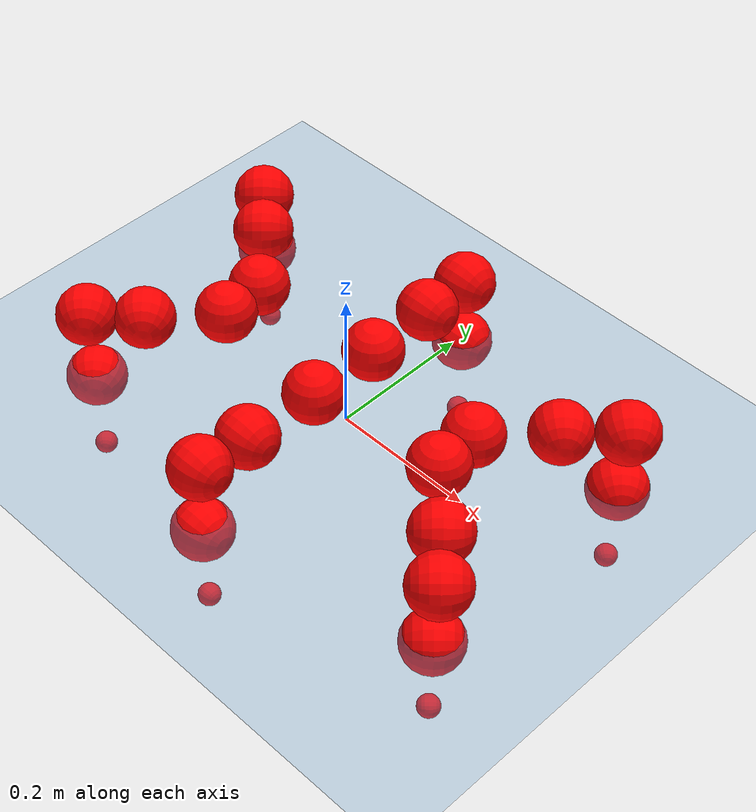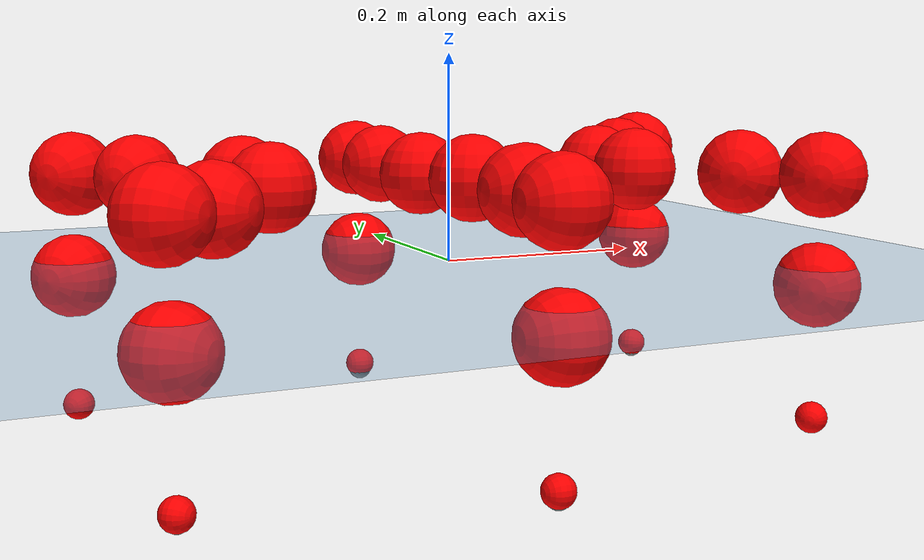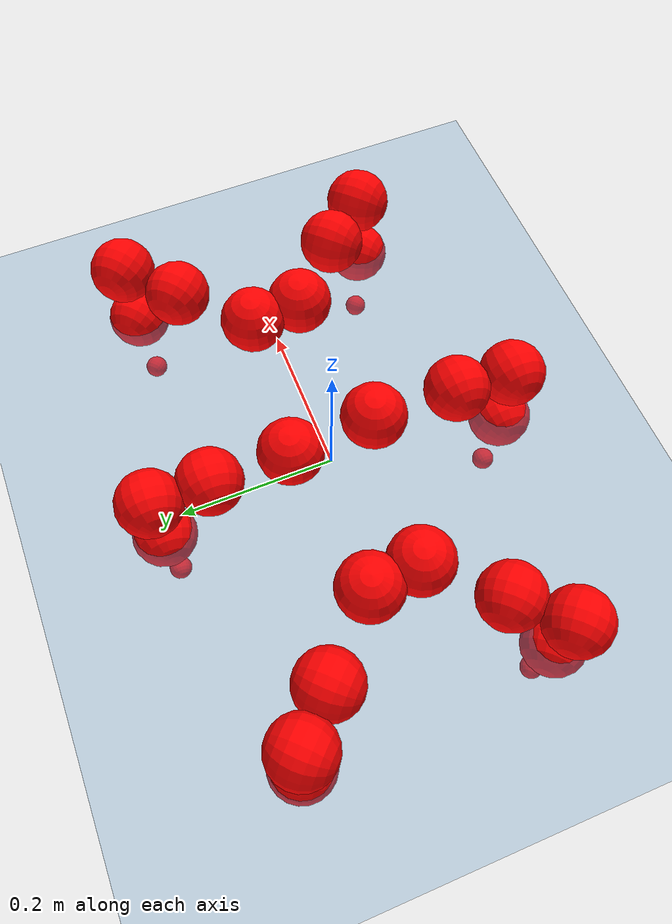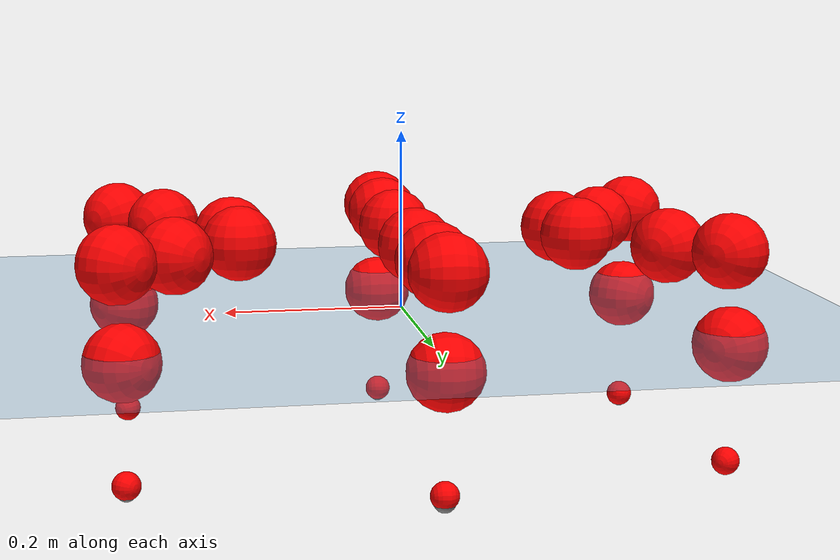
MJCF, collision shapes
<mujoco model="Golem">
  <compiler angle="radian" assetdir="assets" balanceinertia="true" inertiafromgeom="false"/>

  <option timestep="0.005" density="1.2" viscosity="2e-05"/>

  <size nkey="1"/>

  <visual>
    <quality shadowsize="8192"/>
    <map shadowclip="0.5"/>
  </visual>

  <default>
    <default class="/">
      <joint armature="0.01" damping="0.01" frictionloss="0.01"/>
      <geom contype="0" conaffinity="0" group="1" solref="-1000 -80"/>
      <site size="0.01 0.005 0.005" group="5"/>
      <general forcelimited="true" biastype="affine" gainprm="25" biasprm="0 -25 -0.5"/>
      <default class="visual">
        <geom type="mesh" group="2"/>
      </default>
      <default class="collision">
        <geom group="3"/>
      </default>
      <default class="foot">
        <geom size="0.01 0 0" condim="6" group="4" priority="1" solimp="0.015 1 0.01"/>
      </default>
      <default class="reward_collision_sphere">
        <geom group="5" rgba="1 0 0 1"/>
      </default>
    </default>
  </default>

  <asset>
    <texture type="skybox" colorspace="auto" name="//unnamed_texture_0" builtin="gradient" rgb1="0.95 0.95 0.95" rgb2="0.95 0.95 0.95" width="100" height="600"/>
    <texture type="2d" colorspace="auto" name="texplane" builtin="checker" rgb1="0.345 0.575 0.748" rgb2="0.345 0.575 0.748" markrgb="1 1 1" width="512" height="512"/>
    <material name="MatPlane" class="/" texture="texplane" texuniform="true" texrepeat="2 2" specular="0.9"/>
    <mesh name="body" class="/" file="body.stl" scale="0.001 0.001 0.001"/>
    <mesh name="coxa" class="/" file="coxa.stl" scale="0.001 0.001 0.001"/>
    <mesh name="femur" class="/" file="femur.stl" scale="0.001 0.001 0.001"/>
    <mesh name="tibia" class="/" file="tibia.stl" scale="0.001 0.001 0.001"/>
    <mesh name="tarsus" class="/" file="tarsus.stl" scale="0.001 0.001 0.001"/>
  </asset>

  <worldbody>
    <geom name="floor" class="/" size="100 100 0.125" type="plane" group="0" material="MatPlane"/>
    <light name="toplight_shadow" class="/" pos="0 0 5" dir="0.0990148 0.0990148 -0.990148" type="directional" ambient="0.04 0.04 0.04" diffuse="0.55 0.55 0.55" specular="0.12 0.12 0.12"/>
    <light name="toplight_fill" class="/" pos="0 0 5" dir="0.0990148 0.0990148 -0.990148" type="directional" castshadow="false" ambient="0.04 0.04 0.04" diffuse="0.3 0.3 0.3" specular="0.08 0.08 0.08"/>
    <body name="trunk" pos="-0.00107088 0.00148628 0.00495271" quat="1 -1.88904e-05 8.79976e-05 8.74742e-05">
      <inertial pos="0.000912505 0.000193763 -0.00487041" quat="0.999978 -0.00173202 -0.00194238 -0.00602961" mass="4.00879" diaginertia="0.0291788 0.00150004 0.0240574"/>
      <joint name="//unnamed_joint_0" type="free"/>
      <geom name="//unnamed_geom_1" class="/" pos="0 0 0.075702" quat="1 0 0 0" type="mesh" rgba="0.9 0.9 0.9 1" mesh="body"/>
      <site name="imu" class="/" pos="0.166206 -0.00930227 0.129815" size="0.0102814"/>
      <camera name="track" class="/" pos="0 -1.36803 0" quat="0.707107 0.707107 0 0" mode="trackcom"/>
      <camera name="ego_camera" class="/" pos="0.158284 0 0.118284" quat="-0.5 -0.5 0.5 0.5"/>
      <body name="coxa_RR" pos="-0.212935 -0.059229 0.0779196" quat="0.383353 -0.000404851 1.17196e-05 -0.923602">
        <inertial pos="0.00080055 0.00469419 0.00216075" quat="0.999925 -0.004652 -0.00843954 0.00751748" mass="0.231947" diaginertia="0.0292002 0.00154734 0.0256128"/>
        <joint name="coxa_joint_RR" class="/" pos="0 0 0" axis="0.0184836 0.0261408 -0.999487" range="-3.14992 3.15508" armature="0.0101729" damping="0.0144076" frictionloss="0.0113797"/>
        <geom name="//unnamed_geom_2" class="/" type="mesh" rgba="0.2 0.2 0.2 1" mesh="coxa"/>
        <geom name="//unnamed_geom_3" class="reward_collision_sphere" size="0.0411257" pos="-0.0365271 0 0"/>
        <body name="femur_RR" pos="0.0690257 0.00339351 -0.0071981" quat="0.500615 -0.499539 0.499089 0.500754">
          <inertial pos="-0.0027383 8.90486e-05 -0.000450192" quat="0.999995 -0.00085641 0.00243614 -0.00159669" mass="0.212975" diaginertia="0.0260037 0.0014597 0.0227441"/>
          <joint name="femur_joint_RR" class="/" pos="0 0 0" axis="-0.00251779 0.000894174 -0.999996" range="-3.09139 3.21639" armature="0.0106926" damping="0.0314844" frictionloss="0.00968119"/>
          <geom name="//unnamed_geom_4" class="/" type="mesh" rgba="0.9 0.9 0.9 1" mesh="femur"/>
          <geom name="//unnamed_geom_5" class="reward_collision_sphere" size="0.0411257"/>
          <body name="tibia_RR" pos="-0.00430573 -0.0748845 -0.000766313" quat="0.00021967 1 -9.81035e-05 -6.5648e-05">
            <inertial pos="0.00306742 0.000475752 -0.000265071" quat="0.999966 0.00522293 -0.000820212 0.00635299" mass="0.217227" diaginertia="0.0265703 0.00142186 0.0218376"/>
            <joint name="tibia_joint_RR" class="/" pos="0 0 0" axis="0.000410018 -0.00288204 0.999996" range="-3.04916 3.10611" armature="0.0109723" damping="0.012391" frictionloss="0.0112592"/>
            <geom name="//unnamed_geom_6" class="/" type="mesh" rgba="0.2 0.2 0.2 1" mesh="tibia"/>
            <geom name="//unnamed_geom_7" class="reward_collision_sphere" size="0.0411257"/>
            <body name="tarsus_RR" pos="0.107984 -0.00269429 -0.0024773" quat="0.999999 -0.000770084 0.000164684 0.000789436">
              <inertial pos="0.0774864 -0.00353109 0.00137408" quat="0.504477 0.503217 0.493192 0.499037" mass="0.223021" diaginertia="0.0275095 0.00155427 0.0236553"/>
              <joint name="tarsus_joint_RR" class="/" pos="0 0 0" axis="-0.00394784 -0.001076 0.999992" stiffness="0.0280707" range="-3.09094 3.13844" armature="0.0094434" damping="0.0192212" frictionloss="0.00925063"/>
              <geom name="//unnamed_geom_8" class="/" type="mesh" rgba="0.9 0.9 0.9 1" mesh="tarsus"/>
              <geom name="foot_1" class="foot" size="0.0105145" pos="0.136368 0 0" quat="0 -0.707107 0 0.707107"/>
              <geom name="//unnamed_geom_10" class="reward_collision_sphere" size="0.0411257"/>
              <geom name="//unnamed_geom_11" class="reward_collision_sphere" size="0.0154221" pos="0.130889 0 0"/>
              <site name="foot_1" class="foot" pos="0.136368 0 0" quat="0 -0.707107 0 0.707107" size="0.0102814"/>
            </body>
          </body>
        </body>
      </body>
      <body name="coxa_RM" pos="0.000187303 -0.0922512 0.0808197" quat="0.705586 0.00164437 3.11157e-05 -0.708623">
        <inertial pos="0.00318606 -0.000360093 -0.000989599" quat="0.999937 -0.00687321 0.00883123 -0.000769505" mass="0.217455" diaginertia="0.0279663 0.00151241 0.0221065"/>
        <joint name="coxa_joint_RM" class="/" pos="0 0 0" axis="0.00426455 0.00306176 -0.999986" range="-3.0279 3.15218" armature="0.00911777" damping="0.012225" frictionloss="0.01024"/>
        <geom name="//unnamed_geom_12" class="/" type="mesh" rgba="0.2 0.2 0.2 1" mesh="coxa"/>
        <geom name="//unnamed_geom_13" class="reward_collision_sphere" size="0.0411257" pos="-0.0365271 0 0"/>
        <body name="femur_RM" pos="0.072389 -0.00214339 -0.000113354" quat="0.499576 -0.499452 0.5015 0.499469">
          <inertial pos="0.000894042 -0.00170646 0.0014195" quat="0.999868 0.0096669 0.0128925 0.00198616" mass="0.210179" diaginertia="0.0259539 0.00149108 0.0220519"/>
          <joint name="femur_joint_RM" class="/" pos="0 0 0" axis="-0.00273521 0.00470466 -0.999985" stiffness="0.0232655" range="-3.14424 3.14973" armature="0.0114186" damping="0.0124791" frictionloss="0.00946128"/>
          <geom name="//unnamed_geom_14" class="/" type="mesh" rgba="0.9 0.9 0.9 1" mesh="femur"/>
          <geom name="//unnamed_geom_15" class="reward_collision_sphere" size="0.0411257"/>
          <body name="tibia_RM" pos="0.00142538 -0.0730868 -0.00371651" quat="0.000559134 0.999999 0.00110981 -0.000355135">
            <inertial pos="-0.00258826 -0.00620743 0.00125288" quat="0.999926 -0.00561341 -0.00576679 0.00914854" mass="0.204656" diaginertia="0.0253467 0.00140111 0.0218484"/>
            <joint name="tibia_joint_RM" class="/" pos="0 0 0" axis="3.32921e-05 4.39676e-05 1" range="-3.16045 3.26735" armature="0.0105529" damping="0.0269162" frictionloss="0.010925"/>
            <geom name="//unnamed_geom_16" class="/" type="mesh" rgba="0.2 0.2 0.2 1" mesh="tibia"/>
            <geom name="//unnamed_geom_17" class="reward_collision_sphere" size="0.0411257"/>
            <body name="tarsus_RM" pos="0.110873 0.00394252 0.000713454" quat="1 0.000366325 -0.00030157 -0.000507099">
              <inertial pos="0.0746115 -0.0050645 0.00213914" quat="0.500684 0.50261 0.498451 0.498242" mass="0.236301" diaginertia="0.0273959 0.0015678 0.023275"/>
              <joint name="tarsus_joint_RM" class="/" pos="0 0 0" axis="0.00133378 0.00117235 0.999998" range="-3.14217 3.09084" armature="0.0103378" damping="0.0114325" frictionloss="0.0103573"/>
              <geom name="//unnamed_geom_18" class="/" type="mesh" rgba="0.9 0.9 0.9 1" mesh="tarsus"/>
              <geom name="foot_2" class="foot" size="0.0109245" pos="0.136368 0 0" quat="0 -0.707107 0 0.707107"/>
              <geom name="//unnamed_geom_20" class="reward_collision_sphere" size="0.0411257"/>
              <geom name="//unnamed_geom_21" class="reward_collision_sphere" size="0.0154221" pos="0.130889 0 0"/>
              <site name="foot_2" class="foot" pos="0.136368 0 0" quat="0 -0.707107 0 0.707107" size="0.0102814"/>
            </body>
          </body>
        </body>
      </body>
      <body name="coxa_RF" pos="0.216495 -0.058646 0.0802686" quat="0.923779 -3.12863e-05 0.000112624 -0.382925">
        <inertial pos="0.00364553 0.00252692 -0.00239203" quat="1 -0.000126973 -0.000780087 1.91822e-06" mass="0.205353" diaginertia="0.0247918 0.00148962 0.0215166"/>
        <joint name="coxa_joint_RF" class="/" pos="0 0 0" axis="-0.000562414 0.00147859 -0.999999" range="-3.1381 3.13179" armature="0.0114781" damping="0.00347114" frictionloss="0.0101042"/>
        <geom name="//unnamed_geom_22" class="/" type="mesh" rgba="0.2 0.2 0.2 1" mesh="coxa"/>
        <geom name="//unnamed_geom_23" class="reward_collision_sphere" size="0.0411257" pos="-0.0365271 0 0"/>
        <body name="femur_RF" pos="0.0677302 -6.45485e-05 0.000723915" quat="0.499457 -0.501179 0.500326 0.499035">
          <inertial pos="-0.00240527 -0.00120633 0.00205841" quat="0.999941 0.00333549 0.00793842 0.00658778" mass="0.241672" diaginertia="0.0271213 0.00156544 0.0248423"/>
          <joint name="femur_joint_RF" class="/" pos="0 0 0" axis="0.00256645 -0.00586003 -0.99998" stiffness="0.0268308" range="-3.10739 3.22615" armature="0.0132092" damping="0.0134066" frictionloss="0.0131506"/>
          <geom name="//unnamed_geom_24" class="/" type="mesh" rgba="0.9 0.9 0.9 1" mesh="femur"/>
          <geom name="//unnamed_geom_25" class="reward_collision_sphere" size="0.0411257"/>
          <body name="tibia_RF" pos="8.55191e-05 -0.0785391 -0.00502841" quat="0.000106617 1 1.47844e-05 1.02064e-05">
            <inertial pos="0.00401134 -0.00210338 0.000303301" quat="0.99998 -0.00485676 -0.00178042 0.00351492" mass="0.223857" diaginertia="0.027617 0.00150273 0.023405"/>
            <joint name="tibia_joint_RF" class="/" pos="0 0 0" axis="-8.6451e-05 0.00219651 0.999998" range="-3.14795 3.16199" armature="0.0107458" damping="0.0212829" frictionloss="0.0102911"/>
            <geom name="//unnamed_geom_26" class="/" type="mesh" rgba="0.2 0.2 0.2 1" mesh="tibia"/>
            <geom name="//unnamed_geom_27" class="reward_collision_sphere" size="0.0411257"/>
            <body name="tarsus_RF" pos="0.105329 -0.00112513 0.00368999" quat="1 4.02354e-05 0.000565802 0.000286155">
              <inertial pos="0.0764324 -4.62166e-05 -0.000806223" quat="0.517339 0.508919 0.496513 0.476274" mass="0.221913" diaginertia="0.0263991 0.00146285 0.0243994"/>
              <joint name="tarsus_joint_RF" class="/" pos="0 0 0" axis="-0.00172663 -0.000809524 0.999998" range="-3.18584 3.1209" armature="0.012688" damping="0.00173222" frictionloss="0.0118236"/>
              <geom name="//unnamed_geom_28" class="/" type="mesh" rgba="0.9 0.9 0.9 1" mesh="tarsus"/>
              <geom name="foot_3" class="foot" size="0.0101214" pos="0.136368 0 0" quat="0 -0.707107 0 0.707107"/>
              <geom name="//unnamed_geom_30" class="reward_collision_sphere" size="0.0411257"/>
              <geom name="//unnamed_geom_31" class="reward_collision_sphere" size="0.0154221" pos="0.130889 0 0"/>
              <site name="foot_3" class="foot" pos="0.136368 0 0" quat="0 -0.707107 0 0.707107" size="0.0102814"/>
            </body>
          </body>
        </body>
      </body>
      <body name="coxa_LR" pos="-0.220056 0.0573602 0.0794421" quat="0.383384 0.000608614 -0.000572397 0.923588">
        <inertial pos="0.00191 -0.000743865 -0.000701604" quat="0.999724 -0.0102534 0.01906 0.00913231" mass="0.210027" diaginertia="0.0270702 0.00143887 0.0231221"/>
        <joint name="coxa_joint_LR" class="/" pos="0 0 0" axis="-0.00740918 -0.00460406 -0.999962" range="-3.14001 3.15805" armature="0.00907572" damping="0.0190338" frictionloss="0.0112109"/>
        <geom name="//unnamed_geom_32" class="/" type="mesh" rgba="0.2 0.2 0.2 1" mesh="coxa"/>
        <geom name="//unnamed_geom_33" class="reward_collision_sphere" size="0.0411257" pos="-0.0365271 0 0"/>
        <body name="femur_LR" pos="0.0778967 -0.000339568 -0.00206573" quat="0.499474 -0.499892 0.500371 0.500262">
          <inertial pos="0.00293452 0.00439764 -0.00435118" quat="0.999999 -0.000839708 0.00103999 0.000255244" mass="0.207156" diaginertia="0.0271265 0.00144027 0.0227311"/>
          <joint name="femur_joint_LR" class="/" pos="0 0 0" axis="-0.00481154 0.0250074 0.999676" range="-3.11633 3.17442" armature="0.00691806" damping="0.0153462" frictionloss="0.0117279"/>
          <geom name="//unnamed_geom_34" class="/" type="mesh" rgba="0.9 0.9 0.9 1" mesh="femur"/>
          <geom name="//unnamed_geom_35" class="reward_collision_sphere" size="0.0411257"/>
          <body name="tibia_LR" pos="-0.000963925 -0.0725155 0.00162452" quat="-0.000484068 1 -0.000753068 -0.000311309">
            <inertial pos="-0.000108472 0.00443106 -0.00115496" quat="0.999996 0.00102974 -0.00243893 -0.00129335" mass="0.225897" diaginertia="0.0272454 0.00152704 0.0249849"/>
            <joint name="tibia_joint_LR" class="/" pos="0 0 0" axis="0.00278599 0.0196124 -0.999804" stiffness="0.0197393" range="-3.15409 3.21158" armature="0.0104083" damping="0.0284987" frictionloss="0.00972276"/>
            <geom name="//unnamed_geom_36" class="/" type="mesh" rgba="0.2 0.2 0.2 1" mesh="tibia"/>
            <geom name="//unnamed_geom_37" class="reward_collision_sphere" size="0.0411257"/>
            <body name="tarsus_LR" pos="0.101064 0.00413937 0.000356084" quat="1 0.000415241 6.91181e-05 -4.86205e-05">
              <inertial pos="0.0709813 0.00152504 0.00192145" quat="0.500268 0.49654 0.504276 0.498884" mass="0.216804" diaginertia="0.0266727 0.0014814 0.0236261"/>
              <joint name="tarsus_joint_LR" class="/" pos="0 0 0" axis="-0.017604 0.00437121 -0.999835" stiffness="0.00394437" range="-3.10213 3.10514" armature="0.0117762" damping="0.0362569" frictionloss="0.00977815"/>
              <geom name="//unnamed_geom_38" class="/" type="mesh" rgba="0.9 0.9 0.9 1" mesh="tarsus"/>
              <geom name="foot_4" class="foot" size="0.0101197" pos="0.136368 0 0" quat="0.707107 0 -0.707107 0"/>
              <geom name="//unnamed_geom_40" class="reward_collision_sphere" size="0.0411257"/>
              <geom name="//unnamed_geom_41" class="reward_collision_sphere" size="0.0154221" pos="0.130889 0 0"/>
              <site name="foot_4" class="foot" pos="0.136368 0 0" quat="0.707107 0 -0.707107 0" size="0.0102814"/>
            </body>
          </body>
        </body>
      </body>
      <body name="coxa_LM" pos="-0.00497723 0.0897733 0.076104" quat="0.707032 -7.71498e-05 -0.00012926 0.707181">
        <inertial pos="-0.000277601 0.00196961 0.00196066" quat="0.999997 -0.000959213 0.00216074 -0.000933864" mass="0.220689" diaginertia="0.0254025 0.00144811 0.0233456"/>
        <joint name="coxa_joint_LM" class="/" pos="0 0 0" axis="0.0170647 -0.00899623 -0.999814" range="-3.1166 3.02895" armature="0.0104999" damping="0.0171631" frictionloss="0.0104091"/>
        <geom name="//unnamed_geom_42" class="/" type="mesh" rgba="0.2 0.2 0.2 1" mesh="coxa"/>
        <geom name="//unnamed_geom_43" class="reward_collision_sphere" size="0.0411257" pos="-0.0365271 0 0"/>
        <body name="femur_LM" pos="0.0651565 0.00226229 0.00141181" quat="0.500153 -0.500786 0.500361 0.498697">
          <inertial pos="-0.0015857 -0.00267924 0.00101821" quat="0.999999 0.000986108 2.98215e-05 -0.000355479" mass="0.199495" diaginertia="0.0252251 0.00145406 0.0219106"/>
          <joint name="femur_joint_LM" class="/" pos="0 0 0" axis="-0.00320521 0.00884009 0.999956" range="-3.05635 3.2201" armature="0.0111796" damping="0.00236774" frictionloss="0.00972605"/>
          <geom name="//unnamed_geom_44" class="/" type="mesh" rgba="0.9 0.9 0.9 1" mesh="femur"/>
          <geom name="//unnamed_geom_45" class="reward_collision_sphere" size="0.0411257"/>
          <body name="tibia_LM" pos="-0.000900871 -0.0728827 0.00129641" quat="-0.000722666 0.999999 0.000513015 -0.000738927">
            <inertial pos="-0.000993273 0.000475361 0.000645974" quat="0.999965 0.00739204 0.00400996 -2.88448e-05" mass="0.220829" diaginertia="0.0267527 0.00159792 0.0230856"/>
            <joint name="tibia_joint_LM" class="/" pos="0 0 0" axis="-0.00111253 -0.00451674 -0.999989" stiffness="0.030785" range="-3.15726 3.14176" armature="0.0122883" damping="0.0291794" frictionloss="0.0100073"/>
            <geom name="//unnamed_geom_46" class="/" type="mesh" rgba="0.2 0.2 0.2 1" mesh="tibia"/>
            <geom name="//unnamed_geom_47" class="reward_collision_sphere" size="0.0411257"/>
            <body name="tarsus_LM" pos="0.103115 -0.00107809 0.00144321" quat="1 3.24013e-06 7.32522e-06 -8.92006e-06">
              <inertial pos="0.0724631 -2.41756e-05 -0.00237561" quat="0.500438 0.502659 0.498049 0.498842" mass="0.213675" diaginertia="0.0284103 0.00144671 0.0231995"/>
              <joint name="tarsus_joint_LM" class="/" pos="0 0 0" axis="-0.00224997 0.0148107 -0.999888" stiffness="0.00811344" range="-3.18117 3.16085" armature="0.0092805" damping="0.00449373" frictionloss="0.0101243"/>
              <geom name="//unnamed_geom_48" class="/" type="mesh" rgba="0.9 0.9 0.9 1" mesh="tarsus"/>
              <geom name="foot_5" class="foot" size="0.0126232" pos="0.136368 0 0" quat="0.707107 0 -0.707107 0"/>
              <geom name="//unnamed_geom_50" class="reward_collision_sphere" size="0.0411257"/>
              <geom name="//unnamed_geom_51" class="reward_collision_sphere" size="0.0154221" pos="0.130889 0 0"/>
              <site name="foot_5" class="foot" pos="0.136368 0 0" quat="0.707107 0 -0.707107 0" size="0.0102814"/>
            </body>
          </body>
        </body>
      </body>
      <body name="coxa_LF" pos="0.211998 0.0579797 0.0795877" quat="0.924494 -0.00139903 -0.000552421 0.381195">
        <inertial pos="0.000931162 0.000731551 -0.00213211" quat="0.999936 -0.000745526 0.0103287 0.00447051" mass="0.211392" diaginertia="0.026122 0.00159145 0.022921"/>
        <joint name="coxa_joint_LF" class="/" pos="0 0 0" axis="-0.00143286 0.0132777 -0.999911" range="-3.08873 3.18349" armature="0.0112873" damping="0.0267663" frictionloss="0.0116084"/>
        <geom name="//unnamed_geom_52" class="/" type="mesh" rgba="0.2 0.2 0.2 1" mesh="coxa"/>
        <geom name="//unnamed_geom_53" class="reward_collision_sphere" size="0.0411257" pos="-0.0365271 0 0"/>
        <body name="femur_LF" pos="0.0694762 0.00327215 0.00226559" quat="0.499572 -0.500402 0.499785 0.50024">
          <inertial pos="-0.000937554 0.00073136 -0.00416742" quat="0.999986 -0.00217245 -0.00326887 0.0036116" mass="0.200019" diaginertia="0.0274799 0.00145623 0.0229987"/>
          <joint name="femur_joint_LF" class="/" pos="0 0 0" axis="0.00412545 -0.00764132 0.999962" range="-3.09382 3.14477" armature="0.0103731" damping="0.00624297" frictionloss="0.00855081"/>
          <geom name="//unnamed_geom_54" class="/" type="mesh" rgba="0.9 0.9 0.9 1" mesh="femur"/>
          <geom name="//unnamed_geom_55" class="reward_collision_sphere" size="0.0411257"/>
          <body name="tibia_LF" pos="-0.0026224 -0.0810423 -0.00280622" quat="0.00149391 0.999997 0.00158754 0.00104364">
            <inertial pos="0.00248457 -0.00360582 0.00246539" quat="0.99974 0.0206679 0.00837545 0.00465269" mass="0.20347" diaginertia="0.0264247 0.00148223 0.0230491"/>
            <joint name="tibia_joint_LF" class="/" pos="0 0 0" axis="0.00307081 0.00187247 -0.999994" stiffness="0.0149534" range="-3.26361 3.15948" armature="0.00914339" damping="0" frictionloss="0.0101698"/>
            <geom name="//unnamed_geom_56" class="/" type="mesh" rgba="0.2 0.2 0.2 1" mesh="tibia"/>
            <geom name="//unnamed_geom_57" class="reward_collision_sphere" size="0.0411257"/>
            <body name="tarsus_LF" pos="0.101516 -0.00235119 -0.000815452" quat="1 -0.00010185 -0.000274295 -0.000107747">
              <inertial pos="0.0781511 -0.00115038 -0.000224632" quat="0.49995 0.499732 0.499832 0.500486" mass="0.221418" diaginertia="0.0271031 0.00152937 0.0221601"/>
              <joint name="tarsus_joint_LF" class="/" pos="0 0 0" axis="0.0151996 -0.005045 -0.999872" stiffness="0.016784" range="-3.12226 3.18986" armature="0.00830229" damping="0.0222676" frictionloss="0.0072934"/>
              <geom name="//unnamed_geom_58" class="/" type="mesh" rgba="0.9 0.9 0.9 1" mesh="tarsus"/>
              <geom name="foot_6" class="foot" size="0.0113058" pos="0.136368 0 0" quat="0.707107 0 -0.707107 0"/>
              <geom name="//unnamed_geom_60" class="reward_collision_sphere" size="0.0411257"/>
              <geom name="//unnamed_geom_61" class="reward_collision_sphere" size="0.0154221" pos="0.130889 0 0"/>
              <site name="foot_6" class="foot" pos="0.136368 0 0" quat="0.707107 0 -0.707107 0" size="0.0102814"/>
            </body>
          </body>
        </body>
      </body>
    </body>
  </worldbody>

  <contact>
    <pair class="/" geom1="floor" geom2="foot_1" name="//unnamed_contact_0"/>
    <pair class="/" geom1="floor" geom2="foot_2" name="//unnamed_contact_1"/>
    <pair class="/" geom1="floor" geom2="foot_3" name="//unnamed_contact_2"/>
    <pair class="/" geom1="floor" geom2="foot_4" name="//unnamed_contact_3"/>
    <pair class="/" geom1="floor" geom2="foot_5" name="//unnamed_contact_4"/>
    <pair class="/" geom1="floor" geom2="foot_6" name="//unnamed_contact_5"/>
  </contact>

  <actuator>
    <general name="coxa_joint_RR" class="/" joint="coxa_joint_RR" forcerange="-7.39168 7.39168" gainprm="25.7428" biasprm="0 -25.7428 -0.531815"/>
    <general name="femur_joint_RR" class="/" joint="femur_joint_RR" forcerange="-7.06333 7.06333" gainprm="25.7428" biasprm="0 -25.7428 -0.531815"/>
    <general name="tibia_joint_RR" class="/" joint="tibia_joint_RR" forcerange="-8.04338 8.04338" gainprm="25.7428" biasprm="0 -25.7428 -0.531815"/>
    <general name="tarsus_joint_RR" class="/" joint="tarsus_joint_RR" forcerange="-8.22786 8.22786" gainprm="25.7428" biasprm="0 -25.7428 -0.531815"/>
    <general name="coxa_joint_RM" class="/" joint="coxa_joint_RM" forcerange="-8.67262 8.67262" gainprm="25.7428" biasprm="0 -25.7428 -0.531815"/>
    <general name="femur_joint_RM" class="/" joint="femur_joint_RM" forcerange="-8.19478 8.19478" gainprm="25.7428" biasprm="0 -25.7428 -0.531815"/>
    <general name="tibia_joint_RM" class="/" joint="tibia_joint_RM" forcerange="-7.56902 7.56902" gainprm="25.7428" biasprm="0 -25.7428 -0.531815"/>
    <general name="tarsus_joint_RM" class="/" joint="tarsus_joint_RM" forcerange="-7.18769 7.18769" gainprm="25.7428" biasprm="0 -25.7428 -0.531815"/>
    <general name="coxa_joint_RF" class="/" joint="coxa_joint_RF" forcerange="-8.03196 8.03196" gainprm="25.7428" biasprm="0 -25.7428 -0.531815"/>
    <general name="femur_joint_RF" class="/" joint="femur_joint_RF" forcerange="-5.79868 5.79868" gainprm="25.7428" biasprm="0 -25.7428 -0.531815"/>
    <general name="tibia_joint_RF" class="/" joint="tibia_joint_RF" forcerange="-6.25567 6.25567" gainprm="25.7428" biasprm="0 -25.7428 -0.531815"/>
    <general name="tarsus_joint_RF" class="/" joint="tarsus_joint_RF" forcerange="-6.46039 6.46039" gainprm="25.7428" biasprm="0 -25.7428 -0.531815"/>
    <general name="coxa_joint_LR" class="/" joint="coxa_joint_LR" forcerange="-7.35226 7.35226" gainprm="25.7428" biasprm="0 -25.7428 -0.531815"/>
    <general name="femur_joint_LR" class="/" joint="femur_joint_LR" forcerange="-7.48223 7.48223" gainprm="25.7428" biasprm="0 -25.7428 -0.531815"/>
    <general name="tibia_joint_LR" class="/" joint="tibia_joint_LR" forcerange="-5.90896 5.90896" gainprm="25.7428" biasprm="0 -25.7428 -0.531815"/>
    <general name="tarsus_joint_LR" class="/" joint="tarsus_joint_LR" forcerange="-6.25553 6.25553" gainprm="25.7428" biasprm="0 -25.7428 -0.531815"/>
    <general name="coxa_joint_LM" class="/" joint="coxa_joint_LM" forcerange="-7.85276 7.85276" gainprm="25.7428" biasprm="0 -25.7428 -0.531815"/>
    <general name="femur_joint_LM" class="/" joint="femur_joint_LM" forcerange="-6.92819 6.92819" gainprm="25.7428" biasprm="0 -25.7428 -0.531815"/>
    <general name="tibia_joint_LM" class="/" joint="tibia_joint_LM" forcerange="-7.5999 7.5999" gainprm="25.7428" biasprm="0 -25.7428 -0.531815"/>
    <general name="tarsus_joint_LM" class="/" joint="tarsus_joint_LM" forcerange="-7.06907 7.06907" gainprm="25.7428" biasprm="0 -25.7428 -0.531815"/>
    <general name="coxa_joint_LF" class="/" joint="coxa_joint_LF" forcerange="-7.72821 7.72821" gainprm="25.7428" biasprm="0 -25.7428 -0.531815"/>
    <general name="femur_joint_LF" class="/" joint="femur_joint_LF" forcerange="-6.53609 6.53609" gainprm="25.7428" biasprm="0 -25.7428 -0.531815"/>
    <general name="tibia_joint_LF" class="/" joint="tibia_joint_LF" forcerange="-6.72465 6.72465" gainprm="25.7428" biasprm="0 -25.7428 -0.531815"/>
    <general name="tarsus_joint_LF" class="/" joint="tarsus_joint_LF" forcerange="-8.05081 8.05081" gainprm="25.7428" biasprm="0 -25.7428 -0.531815"/>
  </actuator>

  <sensor>
    <gyro site="imu" name="imu_angular_velocity"/>
    <velocimeter site="imu" name="imu_linear_velocity"/>
    <framelinvel objtype="site" objname="foot_1" name="foot_1_global_linear_velocity"/>
    <framelinvel objtype="site" objname="foot_2" name="foot_2_global_linear_velocity"/>
    <framelinvel objtype="site" objname="foot_3" name="foot_3_global_linear_velocity"/>
    <framelinvel objtype="site" objname="foot_4" name="foot_4_global_linear_velocity"/>
    <framelinvel objtype="site" objname="foot_5" name="foot_5_global_linear_velocity"/>
    <framelinvel objtype="site" objname="foot_6" name="foot_6_global_linear_velocity"/>
  </sensor>

  <keyframe>
    <key name="home" qpos="0 0 0.1457 1 0 0 0 0 0 0 0 0 0 0 0 0 0 0 0 0 0 0 0 0 0 0 0 0 0 0 0"/>
  </keyframe>
</mujoco>
